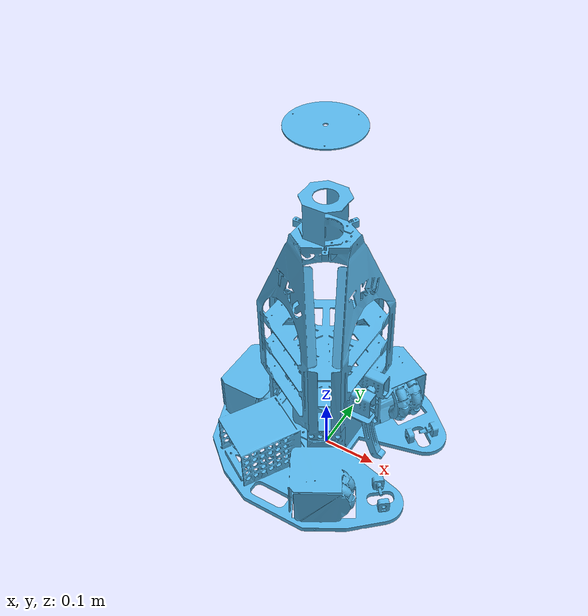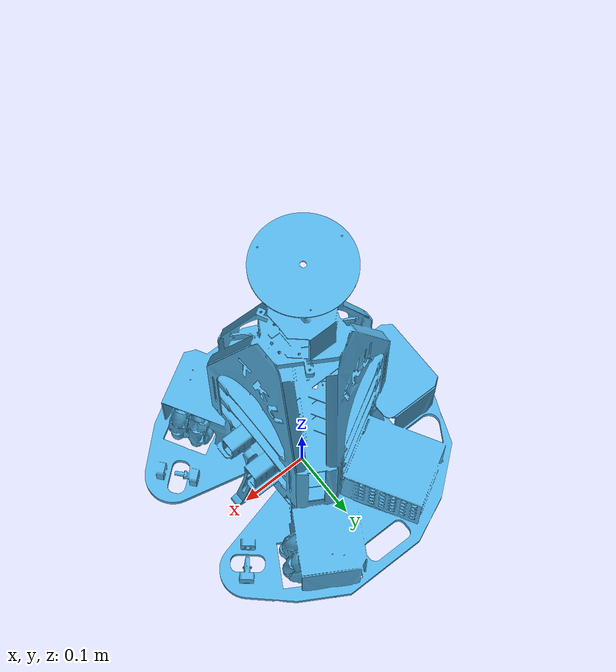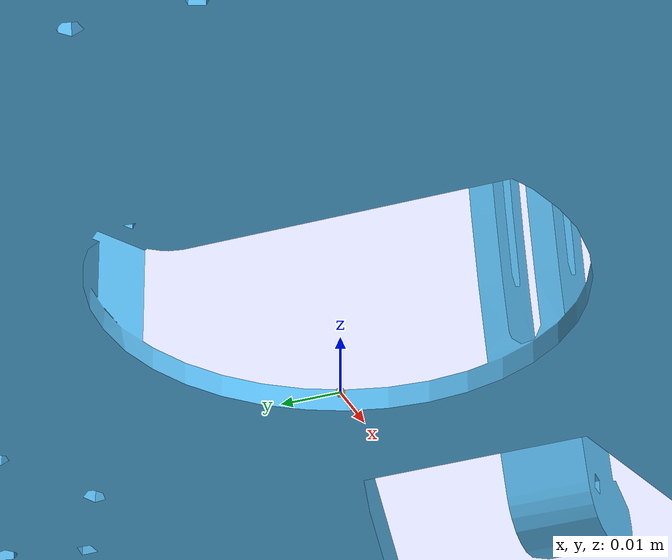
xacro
<?xml version="1.0"?>
<robot name="test_model">

  <!-- root link, on the ground just below the model origin -->
  <link name="base_footprint">
   <visual>
      <origin xyz="0 0 0" rpy="0 0 0" />
      <geometry>
        <box size="0.001 0.001 0.001" />
      </geometry>
    </visual>
  </link>

  <joint name="base_link_joint" type="fixed">
    <origin xyz="0 0 1.25" rpy="0 0 1.57" />
    <parent link="base_footprint"/>
    <child link="base_link" />
  </joint>

  <!-- the model -->
  <link name="base_link">
    <inertial>
      <mass value="50" />
      <origin xyz="0 0 -1.25" />
      <inertia ixx="10" ixy="0.0" ixz="0.0"
        iyy="10" iyz="0.0"
        izz="100" />
    </inertial>
    <visual>
      <origin xyz="0 0 -1.25" rpy="0 0 -1.57"/>
      <geometry>
        <mesh filename="package://robot6th_description/meshes/robot6th.stl"/>
      </geometry>
    </visual>
    <collision>
      <origin xyz="0 0 -1.25" rpy="0 0 -1.57"/>
      <geometry>
        <mesh filename="package://robot6th_description/meshes/robot6th_collision.stl"/>
      </geometry>
    </collision>
  </link>

  <gazebo>
    <plugin name="object_controller" filename="libgazebo_ros_planar_move.so">
      <commandTopic>PathPlan/RobotSpeed</commandTopic>
      <odometryTopic>odom</odometryTopic>
      <odometryFrame>odom</odometryFrame>
      <odometryRate>20.0</odometryRate>
      <robotBaseFrame>base_footprint</robotBaseFrame>
    </plugin>
  </gazebo>

</robot>
